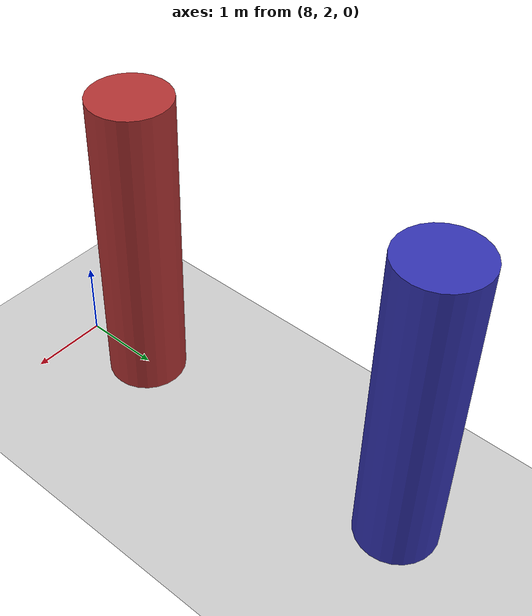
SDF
<?xml version="1.0" encoding="UTF-8"?>
<sdf version="1.9">
  <world name="cylinders">
    <physics type="ode">
      <max_step_size>0.004</max_step_size>
      <real_time_factor>1.0</real_time_factor>
      <real_time_update_rate>250</real_time_update_rate>
    </physics>
    <plugin name="gz::sim::systems::Physics" filename="gz-sim-physics-system"/>
    <plugin name="gz::sim::systems::UserCommands" filename="gz-sim-user-commands-system"/>
    <plugin name="gz::sim::systems::SceneBroadcaster" filename="gz-sim-scene-broadcaster-system"/>
    <plugin name="gz::sim::systems::Contact" filename="gz-sim-contact-system"/>
    <plugin name="gz::sim::systems::Imu" filename="gz-sim-imu-system"/>
    <plugin name="gz::sim::systems::AirPressure" filename="gz-sim-air-pressure-system"/>
    <plugin name="gz::sim::systems::ApplyLinkWrench" filename="gz-sim-apply-link-wrench-system"/>
    <plugin name="gz::sim::systems::NavSat" filename="gz-sim-navsat-system"/>
    <plugin name="gz::sim::systems::Sensors" filename="gz-sim-sensors-system">
      <render_engine>ogre2</render_engine>
    </plugin>

    <gravity>0 0 -9.8</gravity>
    <magnetic_field>6e-06 2.3e-05 -4.2e-05</magnetic_field>
    <atmosphere type="adiabatic"/>

    <scene>
      <grid>false</grid>
      <ambient>0.4 0.4 0.4 1</ambient>
      <background>0.7 0.7 0.7 1</background>
      <shadows>true</shadows>
    </scene>

    <model name="ground_plane">
      <static>true</static>
      <link name="link">
        <collision name="collision"><geometry><plane><normal>0 0 1</normal><size>100 100</size></plane></geometry></collision>
        <visual name="visual"><geometry><plane><normal>0 0 1</normal><size>100 100</size></plane></geometry>
          <material><ambient>0.8 0.8 0.8 1</ambient><diffuse>0.8 0.8 0.8 1</diffuse></material>
        </visual>
      </link>
    </model>

    <light name="sunUTC" type="directional">
      <pose>0 0 500 0 -0 0</pose>
      <cast_shadows>true</cast_shadows>
      <direction>0.001 0.625 -0.78</direction>
      <diffuse>0.904 0.904 0.904 1</diffuse>
    </light>

    <model name="cyl_1">
      <static>true</static>
      <pose>8 3.0 2 0 0 0</pose>
      <link name="link">
        <collision name="c"><geometry><cylinder><radius>0.5</radius><length>4</length></cylinder></geometry></collision>
        <visual name="v"><geometry><cylinder><radius>0.5</radius><length>4</length></cylinder></geometry>
          <material><ambient>0.7 0.2 0.2 1</ambient><diffuse>0.7 0.2 0.2 1</diffuse></material>
        </visual>
      </link>
    </model>

    <model name="cyl_2">
      <static>true</static>
      <pose>8 7.0 2 0 0 0</pose>
      <link name="link">
        <collision name="c"><geometry><cylinder><radius>0.5</radius><length>4</length></cylinder></geometry></collision>
        <visual name="v"><geometry><cylinder><radius>0.5</radius><length>4</length></cylinder></geometry>
          <material><ambient>0.2 0.2 0.7 1</ambient><diffuse>0.2 0.2 0.7 1</diffuse></material>
        </visual>
      </link>
    </model>

    <spherical_coordinates>
      <surface_model>EARTH_WGS84</surface_model>
      <world_frame_orientation>ENU</world_frame_orientation>
      <latitude_deg>19.1313305</latitude_deg>
      <longitude_deg>72.9179216</longitude_deg>
      <elevation>0</elevation>
    </spherical_coordinates>
  </world>
</sdf>
